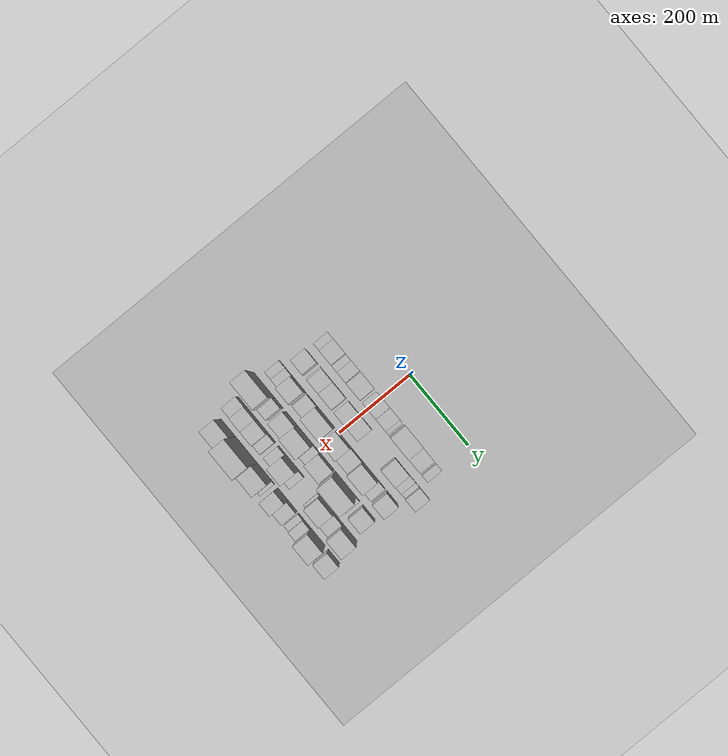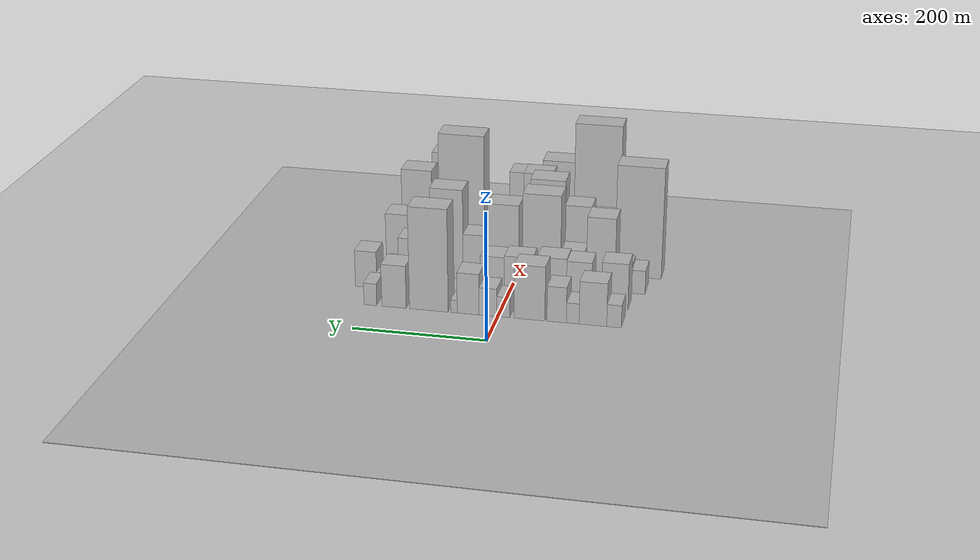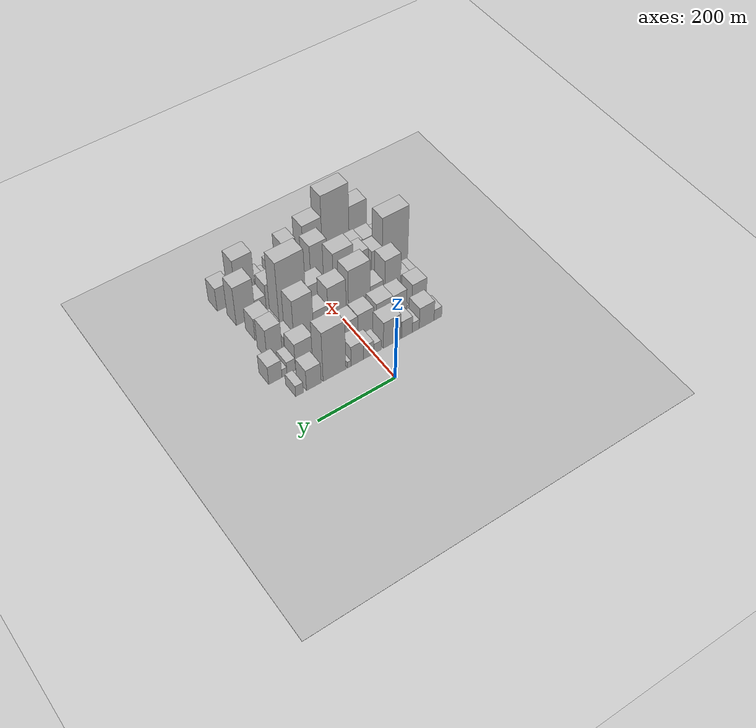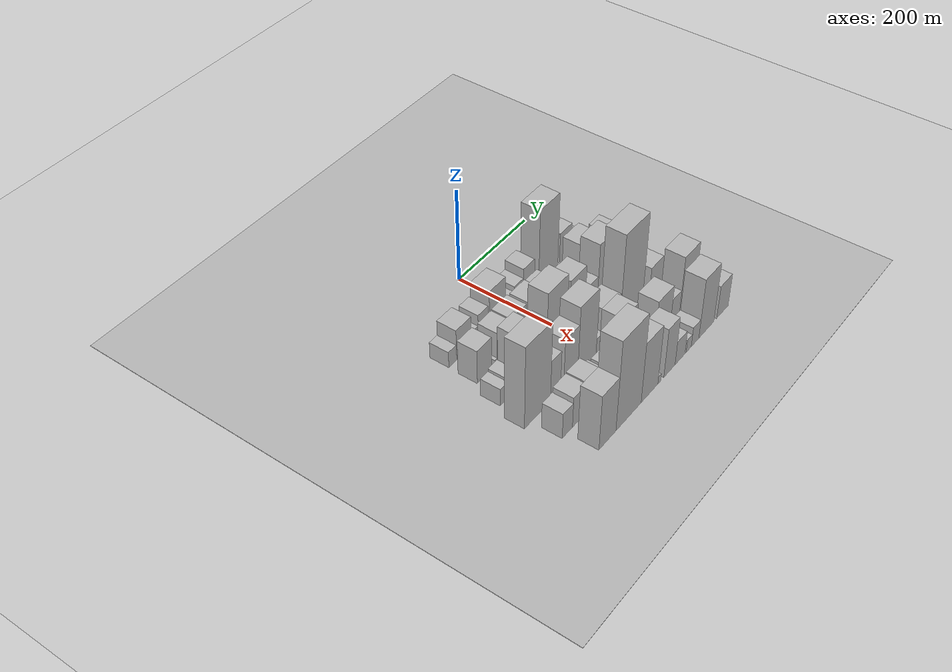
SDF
<sdf version="1.6">
 <world name="default">
  <include><name>ground_plane_1</name><uri>model://HANNAS_ground_plane</uri></include>
  <include>
   <name>ground_plane_2</name>
   <uri>model://HANNAS_ground_plane</uri>
   <pose>100 0 0  0 0 0</pose>
  </include>
  <model name="building_23">
   <static>1</static>
   <pose>100.0000 -173.1768 0 0.000000 0.000000 0.000000</pose>
   <link name="link">
    <pose>0 0 18.00 0 0 0</pose>
    <collision name="collision"><geometry><box><size>40.0000 21.5149 36.0000</size></box></geometry></collision>
    <visual name="visual">
     <cast_shadows>0</cast_shadows>
     <geometry><box><size>40.0000 21.5149 36.0000</size></box></geometry>
     <material>
      <script>
       <uri>model://HANNAS_wall/materials/scripts</uri>
       <uri>model://HANNAS_wall/materials/textures</uri>
       <name>vrc/HANNAS_wall</name>
      </script>
     </material>
    </visual>
   </link>
  </model>
  <model name="building_24">
   <static>1</static>
   <pose>100.0000 -141.9982 0 0.000000 0.000000 0.000000</pose>
   <link name="link">
    <pose>0 0 34.50 0 0 0</pose>
    <collision name="collision"><geometry><box><size>40.0000 40.8422 69.0000</size></box></geometry></collision>
    <visual name="visual">
     <cast_shadows>0</cast_shadows>
     <geometry><box><size>40.0000 40.8422 69.0000</size></box></geometry>
     <material>
      <script>
       <uri>model://HANNAS_wall/materials/scripts</uri>
       <uri>model://HANNAS_wall/materials/textures</uri>
       <name>vrc/HANNAS_wall</name>
      </script>
     </material>
    </visual>
   </link>
  </model>
  <model name="building_25">
   <static>1</static>
   <pose>100.0000 -112.1093 0 0.000000 0.000000 0.000000</pose>
   <link name="link">
    <pose>0 0 16.50 0 0 0</pose>
    <collision name="collision"><geometry><box><size>40.0000 18.9356 33.0000</size></box></geometry></collision>
    <visual name="visual">
     <cast_shadows>0</cast_shadows>
     <geometry><box><size>40.0000 18.9356 33.0000</size></box></geometry>
     <material>
      <script>
       <uri>model://HANNAS_wall/materials/scripts</uri>
       <uri>model://HANNAS_wall/materials/textures</uri>
       <name>vrc/HANNAS_wall</name>
      </script>
     </material>
    </visual>
   </link>
  </model>
  <model name="building_26">
   <static>1</static>
   <pose>100.0000 -88.1540 0 0.000000 0.000000 0.000000</pose>
   <link name="link">
    <pose>0 0 28.50 0 0 0</pose>
    <collision name="collision"><geometry><box><size>40.0000 28.9750 57.0000</size></box></geometry></collision>
    <visual name="visual">
     <cast_shadows>0</cast_shadows>
     <geometry><box><size>40.0000 28.9750 57.0000</size></box></geometry>
     <material>
      <script>
       <uri>model://HANNAS_wall/materials/scripts</uri>
       <uri>model://HANNAS_wall/materials/textures</uri>
       <name>vrc/HANNAS_wall</name>
      </script>
     </material>
    </visual>
   </link>
  </model>
  <model name="building_27">
   <static>1</static>
   <pose>100.0000 -47.4084 0 0.000000 0.000000 0.000000</pose>
   <link name="link">
    <pose>0 0 43.50 0 0 0</pose>
    <collision name="collision"><geometry><box><size>40.0000 46.5162 87.0000</size></box></geometry></collision>
    <visual name="visual">
     <cast_shadows>0</cast_shadows>
     <geometry><box><size>40.0000 46.5162 87.0000</size></box></geometry>
     <material>
      <script>
       <uri>model://HANNAS_wall/materials/scripts</uri>
       <uri>model://HANNAS_wall/materials/textures</uri>
       <name>vrc/HANNAS_wall</name>
      </script>
     </material>
    </visual>
   </link>
  </model>
  <model name="building_28">
   <static>1</static>
   <pose>100.0000 -8.3645 0 0.000000 0.000000 0.000000</pose>
   <link name="link">
    <pose>0 0 16.50 0 0 0</pose>
    <collision name="collision"><geometry><box><size>40.0000 19.5715 33.0000</size></box></geometry></collision>
    <visual name="visual">
     <cast_shadows>0</cast_shadows>
     <geometry><box><size>40.0000 19.5715 33.0000</size></box></geometry>
     <material>
      <script>
       <uri>model://HANNAS_wall/materials/scripts</uri>
       <uri>model://HANNAS_wall/materials/textures</uri>
       <name>vrc/HANNAS_wall</name>
      </script>
     </material>
    </visual>
   </link>
  </model>
  <model name="building_29">
   <static>1</static>
   <pose>100.0000 14.8589 0 0.000000 0.000000 0.000000</pose>
   <link name="link">
    <pose>0 0 22.50 0 0 0</pose>
    <collision name="collision"><geometry><box><size>40.0000 26.8753 45.0000</size></box></geometry></collision>
    <visual name="visual">
     <cast_shadows>0</cast_shadows>
     <geometry><box><size>40.0000 26.8753 45.0000</size></box></geometry>
     <material>
      <script>
       <uri>model://HANNAS_wall/materials/scripts</uri>
       <uri>model://HANNAS_wall/materials/textures</uri>
       <name>vrc/HANNAS_wall</name>
      </script>
     </material>
    </visual>
   </link>
  </model>
  <model name="building_30">
   <static>1</static>
   <pose>100.0000 44.9759 0 0.000000 0.000000 0.000000</pose>
   <link name="link">
    <pose>0 0 33.00 0 0 0</pose>
    <collision name="collision"><geometry><box><size>40.0000 33.3587 66.0000</size></box></geometry></collision>
    <visual name="visual">
     <cast_shadows>0</cast_shadows>
     <geometry><box><size>40.0000 33.3587 66.0000</size></box></geometry>
     <material>
      <script>
       <uri>model://HANNAS_wall/materials/scripts</uri>
       <uri>model://HANNAS_wall/materials/textures</uri>
       <name>vrc/HANNAS_wall</name>
      </script>
     </material>
    </visual>
   </link>
  </model>
  <model name="building_31">
   <static>1</static>
   <pose>100.0000 66.4421 0 0.000000 0.000000 0.000000</pose>
   <link name="link">
    <pose>0 0 10.50 0 0 0</pose>
    <collision name="collision"><geometry><box><size>40.0000 9.5737 21.0000</size></box></geometry></collision>
    <visual name="visual">
     <cast_shadows>0</cast_shadows>
     <geometry><box><size>40.0000 9.5737 21.0000</size></box></geometry>
     <material>
      <script>
       <uri>model://HANNAS_wall/materials/scripts</uri>
       <uri>model://HANNAS_wall/materials/textures</uri>
       <name>vrc/HANNAS_wall</name>
      </script>
     </material>
    </visual>
   </link>
  </model>
  <model name="building_32">
   <static>1</static>
   <pose>100.0000 104.7939 0 0.000000 0.000000 0.000000</pose>
   <link name="link">
    <pose>0 0 82.50 0 0 0</pose>
    <collision name="collision"><geometry><box><size>40.0000 59.1299 165.0000</size></box></geometry></collision>
    <visual name="visual">
     <cast_shadows>0</cast_shadows>
     <geometry><box><size>40.0000 59.1299 165.0000</size></box></geometry>
     <material>
      <script>
       <uri>model://HANNAS_wall/materials/scripts</uri>
       <uri>model://HANNAS_wall/materials/textures</uri>
       <name>vrc/HANNAS_wall</name>
      </script>
     </material>
    </visual>
   </link>
  </model>
  <model name="building_33">
   <static>1</static>
   <pose>100.0000 158.1552 0 0.000000 0.000000 0.000000</pose>
   <link name="link">
    <pose>0 0 34.50 0 0 0</pose>
    <collision name="collision"><geometry><box><size>40.0000 37.5928 69.0000</size></box></geometry></collision>
    <visual name="visual">
     <cast_shadows>0</cast_shadows>
     <geometry><box><size>40.0000 37.5928 69.0000</size></box></geometry>
     <material>
      <script>
       <uri>model://HANNAS_wall/materials/scripts</uri>
       <uri>model://HANNAS_wall/materials/textures</uri>
       <name>vrc/HANNAS_wall</name>
      </script>
     </material>
    </visual>
   </link>
  </model>
  <model name="building_34">
   <static>1</static>
   <pose>100.0000 194.7335 0 0.000000 0.000000 0.000000</pose>
   <link name="link">
    <pose>0 0 18.00 0 0 0</pose>
    <collision name="collision"><geometry><box><size>40.0000 19.5636 36.0000</size></box></geometry></collision>
    <visual name="visual">
     <cast_shadows>0</cast_shadows>
     <geometry><box><size>40.0000 19.5636 36.0000</size></box></geometry>
     <material>
      <script>
       <uri>model://HANNAS_wall/materials/scripts</uri>
       <uri>model://HANNAS_wall/materials/textures</uri>
       <name>vrc/HANNAS_wall</name>
      </script>
     </material>
    </visual>
   </link>
  </model>
  <model name="building_75">
   <static>1</static>
   <pose>160.0000 -164.9304 0 0.000000 0.000000 0.000000</pose>
   <link name="link">
    <pose>0 0 37.50 0 0 0</pose>
    <collision name="collision"><geometry><box><size>40.0000 40.0663 75.0000</size></box></geometry></collision>
    <visual name="visual">
     <cast_shadows>0</cast_shadows>
     <geometry><box><size>40.0000 40.0663 75.0000</size></box></geometry>
     <material>
      <script>
       <uri>model://HANNAS_wall/materials/scripts</uri>
       <uri>model://HANNAS_wall/materials/textures</uri>
       <name>vrc/HANNAS_wall</name>
      </script>
     </material>
    </visual>
   </link>
  </model>
  <model name="building_76">
   <static>1</static>
   <pose>160.0000 -133.4477 0 0.000000 0.000000 0.000000</pose>
   <link name="link">
    <pose>0 0 7.50 0 0 0</pose>
    <collision name="collision"><geometry><box><size>40.0000 6.8991 15.0000</size></box></geometry></collision>
    <visual name="visual">
     <cast_shadows>0</cast_shadows>
     <geometry><box><size>40.0000 6.8991 15.0000</size></box></geometry>
     <material>
      <script>
       <uri>model://HANNAS_wall/materials/scripts</uri>
       <uri>model://HANNAS_wall/materials/textures</uri>
       <name>vrc/HANNAS_wall</name>
      </script>
     </material>
    </visual>
   </link>
  </model>
  <model name="building_77">
   <static>1</static>
   <pose>160.0000 -111.0752 0 0.000000 0.000000 0.000000</pose>
   <link name="link">
    <pose>0 0 36.00 0 0 0</pose>
    <collision name="collision"><geometry><box><size>40.0000 37.8458 72.0000</size></box></geometry></collision>
    <visual name="visual">
     <cast_shadows>0</cast_shadows>
     <geometry><box><size>40.0000 37.8458 72.0000</size></box></geometry>
     <material>
      <script>
       <uri>model://HANNAS_wall/materials/scripts</uri>
       <uri>model://HANNAS_wall/materials/textures</uri>
       <name>vrc/HANNAS_wall</name>
      </script>
     </material>
    </visual>
   </link>
  </model>
  <model name="building_78">
   <static>1</static>
   <pose>160.0000 -69.7452 0 0.000000 0.000000 0.000000</pose>
   <link name="link">
    <pose>0 0 37.50 0 0 0</pose>
    <collision name="collision"><geometry><box><size>40.0000 44.8142 75.0000</size></box></geometry></collision>
    <visual name="visual">
     <cast_shadows>0</cast_shadows>
     <geometry><box><size>40.0000 44.8142 75.0000</size></box></geometry>
     <material>
      <script>
       <uri>model://HANNAS_wall/materials/scripts</uri>
       <uri>model://HANNAS_wall/materials/textures</uri>
       <name>vrc/HANNAS_wall</name>
      </script>
     </material>
    </visual>
   </link>
  </model>
  <model name="building_79">
   <static>1</static>
   <pose>160.0000 -18.9904 0 0.000000 0.000000 0.000000</pose>
   <link name="link">
    <pose>0 0 36.00 0 0 0</pose>
    <collision name="collision"><geometry><box><size>40.0000 42.6954 72.0000</size></box></geometry></collision>
    <visual name="visual">
     <cast_shadows>0</cast_shadows>
     <geometry><box><size>40.0000 42.6954 72.0000</size></box></geometry>
     <material>
      <script>
       <uri>model://HANNAS_wall/materials/scripts</uri>
       <uri>model://HANNAS_wall/materials/textures</uri>
       <name>vrc/HANNAS_wall</name>
      </script>
     </material>
    </visual>
   </link>
  </model>
  <model name="building_80">
   <static>1</static>
   <pose>160.0000 20.8793 0 0.000000 0.000000 0.000000</pose>
   <link name="link">
    <pose>0 0 34.50 0 0 0</pose>
    <collision name="collision"><geometry><box><size>40.0000 37.0440 69.0000</size></box></geometry></collision>
    <visual name="visual">
     <cast_shadows>0</cast_shadows>
     <geometry><box><size>40.0000 37.0440 69.0000</size></box></geometry>
     <material>
      <script>
       <uri>model://HANNAS_wall/materials/scripts</uri>
       <uri>model://HANNAS_wall/materials/textures</uri>
       <name>vrc/HANNAS_wall</name>
      </script>
     </material>
    </visual>
   </link>
  </model>
  <model name="building_81">
   <static>1</static>
   <pose>160.0000 142.2813 0 0.000000 0.000000 0.000000</pose>
   <link name="link">
    <pose>0 0 43.50 0 0 0</pose>
    <collision name="collision"><geometry><box><size>40.0000 47.9201 87.0000</size></box></geometry></collision>
    <visual name="visual">
     <cast_shadows>0</cast_shadows>
     <geometry><box><size>40.0000 47.9201 87.0000</size></box></geometry>
     <material>
      <script>
       <uri>model://HANNAS_wall/materials/scripts</uri>
       <uri>model://HANNAS_wall/materials/textures</uri>
       <name>vrc/HANNAS_wall</name>
      </script>
     </material>
    </visual>
   </link>
  </model>
  <model name="building_82">
   <static>1</static>
   <pose>160.0000 177.0763 0 0.000000 0.000000 0.000000</pose>
   <link name="link">
    <pose>0 0 21.00 0 0 0</pose>
    <collision name="collision"><geometry><box><size>40.0000 21.6699 42.0000</size></box></geometry></collision>
    <visual name="visual">
     <cast_shadows>0</cast_shadows>
     <geometry><box><size>40.0000 21.6699 42.0000</size></box></geometry>
     <material>
      <script>
       <uri>model://HANNAS_wall/materials/scripts</uri>
       <uri>model://HANNAS_wall/materials/textures</uri>
       <name>vrc/HANNAS_wall</name>
      </script>
     </material>
    </visual>
   </link>
  </model>
  <model name="building_83">
   <static>1</static>
   <pose>160.0000 194.3871 0 0.000000 0.000000 0.000000</pose>
   <link name="link">
    <pose>0 0 13.50 0 0 0</pose>
    <collision name="collision"><geometry><box><size>40.0000 12.9517 27.0000</size></box></geometry></collision>
    <visual name="visual">
     <cast_shadows>0</cast_shadows>
     <geometry><box><size>40.0000 12.9517 27.0000</size></box></geometry>
     <material>
      <script>
       <uri>model://HANNAS_wall/materials/scripts</uri>
       <uri>model://HANNAS_wall/materials/textures</uri>
       <name>vrc/HANNAS_wall</name>
      </script>
     </material>
    </visual>
   </link>
  </model>
  <model name="building_84">
   <static>1</static>
   <pose>160.0000 217.7598 0 0.000000 0.000000 0.000000</pose>
   <link name="link">
    <pose>0 0 30.00 0 0 0</pose>
    <collision name="collision"><geometry><box><size>40.0000 33.7938 60.0000</size></box></geometry></collision>
    <visual name="visual">
     <cast_shadows>0</cast_shadows>
     <geometry><box><size>40.0000 33.7938 60.0000</size></box></geometry>
     <material>
      <script>
       <uri>model://HANNAS_wall/materials/scripts</uri>
       <uri>model://HANNAS_wall/materials/textures</uri>
       <name>vrc/HANNAS_wall</name>
      </script>
     </material>
    </visual>
   </link>
  </model>
  <model name="building_125">
   <static>1</static>
   <pose>220.0000 -192.3449 0 0.000000 0.000000 0.000000</pose>
   <link name="link">
    <pose>0 0 19.50 0 0 0</pose>
    <collision name="collision"><geometry><box><size>40.0000 20.8407 39.0000</size></box></geometry></collision>
    <visual name="visual">
     <cast_shadows>0</cast_shadows>
     <geometry><box><size>40.0000 20.8407 39.0000</size></box></geometry>
     <material>
      <script>
       <uri>model://HANNAS_wall/materials/scripts</uri>
       <uri>model://HANNAS_wall/materials/textures</uri>
       <name>vrc/HANNAS_wall</name>
      </script>
     </material>
    </visual>
   </link>
  </model>
  <model name="building_126">
   <static>1</static>
   <pose>220.0000 -169.1931 0 0.000000 0.000000 0.000000</pose>
   <link name="link">
    <pose>0 0 22.50 0 0 0</pose>
    <collision name="collision"><geometry><box><size>40.0000 25.4629 45.0000</size></box></geometry></collision>
    <visual name="visual">
     <cast_shadows>0</cast_shadows>
     <geometry><box><size>40.0000 25.4629 45.0000</size></box></geometry>
     <material>
      <script>
       <uri>model://HANNAS_wall/materials/scripts</uri>
       <uri>model://HANNAS_wall/materials/textures</uri>
       <name>vrc/HANNAS_wall</name>
      </script>
     </material>
    </visual>
   </link>
  </model>
  <model name="building_127">
   <static>1</static>
   <pose>220.0000 -134.4744 0 0.000000 0.000000 0.000000</pose>
   <link name="link">
    <pose>0 0 60.00 0 0 0</pose>
    <collision name="collision"><geometry><box><size>40.0000 43.9745 120.0000</size></box></geometry></collision>
    <visual name="visual">
     <cast_shadows>0</cast_shadows>
     <geometry><box><size>40.0000 43.9745 120.0000</size></box></geometry>
     <material>
      <script>
       <uri>model://HANNAS_wall/materials/scripts</uri>
       <uri>model://HANNAS_wall/materials/textures</uri>
       <name>vrc/HANNAS_wall</name>
      </script>
     </material>
    </visual>
   </link>
  </model>
  <model name="building_128">
   <static>1</static>
   <pose>220.0000 -90.5871 0 0.000000 0.000000 0.000000</pose>
   <link name="link">
    <pose>0 0 30.00 0 0 0</pose>
    <collision name="collision"><geometry><box><size>40.0000 35.8001 60.0000</size></box></geometry></collision>
    <visual name="visual">
     <cast_shadows>0</cast_shadows>
     <geometry><box><size>40.0000 35.8001 60.0000</size></box></geometry>
     <material>
      <script>
       <uri>model://HANNAS_wall/materials/scripts</uri>
       <uri>model://HANNAS_wall/materials/textures</uri>
       <name>vrc/HANNAS_wall</name>
      </script>
     </material>
    </visual>
   </link>
  </model>
  <model name="building_129">
   <static>1</static>
   <pose>220.0000 -43.1954 0 0.000000 0.000000 0.000000</pose>
   <link name="link">
    <pose>0 0 75.00 0 0 0</pose>
    <collision name="collision"><geometry><box><size>40.0000 58.9833 150.0000</size></box></geometry></collision>
    <visual name="visual">
     <cast_shadows>0</cast_shadows>
     <geometry><box><size>40.0000 58.9833 150.0000</size></box></geometry>
     <material>
      <script>
       <uri>model://HANNAS_wall/materials/scripts</uri>
       <uri>model://HANNAS_wall/materials/textures</uri>
       <name>vrc/HANNAS_wall</name>
      </script>
     </material>
    </visual>
   </link>
  </model>
  <model name="building_130">
   <static>1</static>
   <pose>220.0000 16.4787 0 0.000000 0.000000 0.000000</pose>
   <link name="link">
    <pose>0 0 64.50 0 0 0</pose>
    <collision name="collision"><geometry><box><size>40.0000 48.3648 129.0000</size></box></geometry></collision>
    <visual name="visual">
     <cast_shadows>0</cast_shadows>
     <geometry><box><size>40.0000 48.3648 129.0000</size></box></geometry>
     <material>
      <script>
       <uri>model://HANNAS_wall/materials/scripts</uri>
       <uri>model://HANNAS_wall/materials/textures</uri>
       <name>vrc/HANNAS_wall</name>
      </script>
     </material>
    </visual>
   </link>
  </model>
  <model name="building_131">
   <static>1</static>
   <pose>220.0000 60.0836 0 0.000000 0.000000 0.000000</pose>
   <link name="link">
    <pose>0 0 37.50 0 0 0</pose>
    <collision name="collision"><geometry><box><size>40.0000 38.8449 75.0000</size></box></geometry></collision>
    <visual name="visual">
     <cast_shadows>0</cast_shadows>
     <geometry><box><size>40.0000 38.8449 75.0000</size></box></geometry>
     <material>
      <script>
       <uri>model://HANNAS_wall/materials/scripts</uri>
       <uri>model://HANNAS_wall/materials/textures</uri>
       <name>vrc/HANNAS_wall</name>
      </script>
     </material>
    </visual>
   </link>
  </model>
  <model name="building_132">
   <static>1</static>
   <pose>220.0000 105.2990 0 0.000000 0.000000 0.000000</pose>
   <link name="link">
    <pose>0 0 73.50 0 0 0</pose>
    <collision name="collision"><geometry><box><size>40.0000 51.5858 147.0000</size></box></geometry></collision>
    <visual name="visual">
     <cast_shadows>0</cast_shadows>
     <geometry><box><size>40.0000 51.5858 147.0000</size></box></geometry>
     <material>
      <script>
       <uri>model://HANNAS_wall/materials/scripts</uri>
       <uri>model://HANNAS_wall/materials/textures</uri>
       <name>vrc/HANNAS_wall</name>
      </script>
     </material>
    </visual>
   </link>
  </model>
  <model name="building_133">
   <static>1</static>
   <pose>220.0000 144.1184 0 0.000000 0.000000 0.000000</pose>
   <link name="link">
    <pose>0 0 22.50 0 0 0</pose>
    <collision name="collision"><geometry><box><size>40.0000 26.0529 45.0000</size></box></geometry></collision>
    <visual name="visual">
     <cast_shadows>0</cast_shadows>
     <geometry><box><size>40.0000 26.0529 45.0000</size></box></geometry>
     <material>
      <script>
       <uri>model://HANNAS_wall/materials/scripts</uri>
       <uri>model://HANNAS_wall/materials/textures</uri>
       <name>vrc/HANNAS_wall</name>
      </script>
     </material>
    </visual>
   </link>
  </model>
  <model name="building_134">
   <static>1</static>
   <pose>220.0000 181.7764 0 0.000000 0.000000 0.000000</pose>
   <link name="link">
    <pose>0 0 49.50 0 0 0</pose>
    <collision name="collision"><geometry><box><size>40.0000 39.2630 99.0000</size></box></geometry></collision>
    <visual name="visual">
     <cast_shadows>0</cast_shadows>
     <geometry><box><size>40.0000 39.2630 99.0000</size></box></geometry>
     <material>
      <script>
       <uri>model://HANNAS_wall/materials/scripts</uri>
       <uri>model://HANNAS_wall/materials/textures</uri>
       <name>vrc/HANNAS_wall</name>
      </script>
     </material>
    </visual>
   </link>
  </model>
  <model name="building_182">
   <static>1</static>
   <pose>280.0000 -183.7729 0 0.000000 0.000000 0.000000</pose>
   <link name="link">
    <pose>0 0 91.50 0 0 0</pose>
    <collision name="collision"><geometry><box><size>40.0000 72.4180 183.0000</size></box></geometry></collision>
    <visual name="visual">
     <cast_shadows>0</cast_shadows>
     <geometry><box><size>40.0000 72.4180 183.0000</size></box></geometry>
     <material>
      <script>
       <uri>model://HANNAS_wall/materials/scripts</uri>
       <uri>model://HANNAS_wall/materials/textures</uri>
       <name>vrc/HANNAS_wall</name>
      </script>
     </material>
    </visual>
   </link>
  </model>
  <model name="building_183">
   <static>1</static>
   <pose>280.0000 -133.1842 0 0.000000 0.000000 0.000000</pose>
   <link name="link">
    <pose>0 0 46.50 0 0 0</pose>
    <collision name="collision"><geometry><box><size>40.0000 28.7594 93.0000</size></box></geometry></collision>
    <visual name="visual">
     <cast_shadows>0</cast_shadows>
     <geometry><box><size>40.0000 28.7594 93.0000</size></box></geometry>
     <material>
      <script>
       <uri>model://HANNAS_wall/materials/scripts</uri>
       <uri>model://HANNAS_wall/materials/textures</uri>
       <name>vrc/HANNAS_wall</name>
      </script>
     </material>
    </visual>
   </link>
  </model>
  <model name="building_184">
   <static>1</static>
   <pose>280.0000 -89.0479 0 0.000000 0.000000 0.000000</pose>
   <link name="link">
    <pose>0 0 55.50 0 0 0</pose>
    <collision name="collision"><geometry><box><size>40.0000 41.5133 111.0000</size></box></geometry></collision>
    <visual name="visual">
     <cast_shadows>0</cast_shadows>
     <geometry><box><size>40.0000 41.5133 111.0000</size></box></geometry>
     <material>
      <script>
       <uri>model://HANNAS_wall/materials/scripts</uri>
       <uri>model://HANNAS_wall/materials/textures</uri>
       <name>vrc/HANNAS_wall</name>
      </script>
     </material>
    </visual>
   </link>
  </model>
  <model name="building_185">
   <static>1</static>
   <pose>280.0000 -40.9970 0 0.000000 0.000000 0.000000</pose>
   <link name="link">
    <pose>0 0 75.00 0 0 0</pose>
    <collision name="collision"><geometry><box><size>40.0000 54.5884 150.0000</size></box></geometry></collision>
    <visual name="visual">
     <cast_shadows>0</cast_shadows>
     <geometry><box><size>40.0000 54.5884 150.0000</size></box></geometry>
     <material>
      <script>
       <uri>model://HANNAS_wall/materials/scripts</uri>
       <uri>model://HANNAS_wall/materials/textures</uri>
       <name>vrc/HANNAS_wall</name>
      </script>
     </material>
    </visual>
   </link>
  </model>
  <model name="building_186">
   <static>1</static>
   <pose>280.0000 -3.6374 0 0.000000 0.000000 0.000000</pose>
   <link name="link">
    <pose>0 0 18.00 0 0 0</pose>
    <collision name="collision"><geometry><box><size>40.0000 20.1308 36.0000</size></box></geometry></collision>
    <visual name="visual">
     <cast_shadows>0</cast_shadows>
     <geometry><box><size>40.0000 20.1308 36.0000</size></box></geometry>
     <material>
      <script>
       <uri>model://HANNAS_wall/materials/scripts</uri>
       <uri>model://HANNAS_wall/materials/textures</uri>
       <name>vrc/HANNAS_wall</name>
      </script>
     </material>
    </visual>
   </link>
  </model>
  <model name="building_187">
   <static>1</static>
   <pose>280.0000 31.1905 0 0.000000 0.000000 0.000000</pose>
   <link name="link">
    <pose>0 0 43.50 0 0 0</pose>
    <collision name="collision"><geometry><box><size>40.0000 49.5250 87.0000</size></box></geometry></collision>
    <visual name="visual">
     <cast_shadows>0</cast_shadows>
     <geometry><box><size>40.0000 49.5250 87.0000</size></box></geometry>
     <material>
      <script>
       <uri>model://HANNAS_wall/materials/scripts</uri>
       <uri>model://HANNAS_wall/materials/textures</uri>
       <name>vrc/HANNAS_wall</name>
      </script>
     </material>
    </visual>
   </link>
  </model>
  <model name="building_188">
   <static>1</static>
   <pose>280.0000 94.9098 0 0.000000 0.000000 0.000000</pose>
   <link name="link">
    <pose>0 0 106.50 0 0 0</pose>
    <collision name="collision"><geometry><box><size>40.0000 71.9135 213.0000</size></box></geometry></collision>
    <visual name="visual">
     <cast_shadows>0</cast_shadows>
     <geometry><box><size>40.0000 71.9135 213.0000</size></box></geometry>
     <material>
      <script>
       <uri>model://HANNAS_wall/materials/scripts</uri>
       <uri>model://HANNAS_wall/materials/textures</uri>
       <name>vrc/HANNAS_wall</name>
      </script>
     </material>
    </visual>
   </link>
  </model>
  <model name="building_189">
   <static>1</static>
   <pose>280.0000 137.4088 0 0.000000 0.000000 0.000000</pose>
   <link name="link">
    <pose>0 0 13.50 0 0 0</pose>
    <collision name="collision"><geometry><box><size>40.0000 13.0846 27.0000</size></box></geometry></collision>
    <visual name="visual">
     <cast_shadows>0</cast_shadows>
     <geometry><box><size>40.0000 13.0846 27.0000</size></box></geometry>
     <material>
      <script>
       <uri>model://HANNAS_wall/materials/scripts</uri>
       <uri>model://HANNAS_wall/materials/textures</uri>
       <name>vrc/HANNAS_wall</name>
      </script>
     </material>
    </visual>
   </link>
  </model>
  <model name="building_190">
   <static>1</static>
   <pose>280.0000 174.4395 0 0.000000 0.000000 0.000000</pose>
   <link name="link">
    <pose>0 0 36.00 0 0 0</pose>
    <collision name="collision"><geometry><box><size>40.0000 40.9766 72.0000</size></box></geometry></collision>
    <visual name="visual">
     <cast_shadows>0</cast_shadows>
     <geometry><box><size>40.0000 40.9766 72.0000</size></box></geometry>
     <material>
      <script>
       <uri>model://HANNAS_wall/materials/scripts</uri>
       <uri>model://HANNAS_wall/materials/textures</uri>
       <name>vrc/HANNAS_wall</name>
      </script>
     </material>
    </visual>
   </link>
  </model>
  <model name="building_230">
   <static>1</static>
   <pose>340.0000 -186.9085 0 0.000000 0.000000 0.000000</pose>
   <link name="link">
    <pose>0 0 28.50 0 0 0</pose>
    <collision name="collision"><geometry><box><size>40.0000 28.7687 57.0000</size></box></geometry></collision>
    <visual name="visual">
     <cast_shadows>0</cast_shadows>
     <geometry><box><size>40.0000 28.7687 57.0000</size></box></geometry>
     <material>
      <script>
       <uri>model://HANNAS_wall/materials/scripts</uri>
       <uri>model://HANNAS_wall/materials/textures</uri>
       <name>vrc/HANNAS_wall</name>
      </script>
     </material>
    </visual>
   </link>
  </model>
  <model name="building_231">
   <static>1</static>
   <pose>340.0000 -153.8831 0 0.000000 0.000000 0.000000</pose>
   <link name="link">
    <pose>0 0 34.50 0 0 0</pose>
    <collision name="collision"><geometry><box><size>40.0000 37.2822 69.0000</size></box></geometry></collision>
    <visual name="visual">
     <cast_shadows>0</cast_shadows>
     <geometry><box><size>40.0000 37.2822 69.0000</size></box></geometry>
     <material>
      <script>
       <uri>model://HANNAS_wall/materials/scripts</uri>
       <uri>model://HANNAS_wall/materials/textures</uri>
       <name>vrc/HANNAS_wall</name>
      </script>
     </material>
    </visual>
   </link>
  </model>
  <model name="building_232">
   <static>1</static>
   <pose>340.0000 -115.8529 0 0.000000 0.000000 0.000000</pose>
   <link name="link">
    <pose>0 0 36.00 0 0 0</pose>
    <collision name="collision"><geometry><box><size>40.0000 38.7782 72.0000</size></box></geometry></collision>
    <visual name="visual">
     <cast_shadows>0</cast_shadows>
     <geometry><box><size>40.0000 38.7782 72.0000</size></box></geometry>
     <material>
      <script>
       <uri>model://HANNAS_wall/materials/scripts</uri>
       <uri>model://HANNAS_wall/materials/textures</uri>
       <name>vrc/HANNAS_wall</name>
      </script>
     </material>
    </visual>
   </link>
  </model>
  <model name="building_233">
   <static>1</static>
   <pose>340.0000 -84.1850 0 0.000000 0.000000 0.000000</pose>
   <link name="link">
    <pose>0 0 24.00 0 0 0</pose>
    <collision name="collision"><geometry><box><size>40.0000 24.5577 48.0000</size></box></geometry></collision>
    <visual name="visual">
     <cast_shadows>0</cast_shadows>
     <geometry><box><size>40.0000 24.5577 48.0000</size></box></geometry>
     <material>
      <script>
       <uri>model://HANNAS_wall/materials/scripts</uri>
       <uri>model://HANNAS_wall/materials/textures</uri>
       <name>vrc/HANNAS_wall</name>
      </script>
     </material>
    </visual>
   </link>
  </model>
  <model name="building_234">
   <static>1</static>
   <pose>340.0000 -49.6162 0 0.000000 0.000000 0.000000</pose>
   <link name="link">
    <pose>0 0 21.00 0 0 0</pose>
    <collision name="collision"><geometry><box><size>40.0000 24.5799 42.0000</size></box></geometry></collision>
    <visual name="visual">
     <cast_shadows>0</cast_shadows>
     <geometry><box><size>40.0000 24.5799 42.0000</size></box></geometry>
     <material>
      <script>
       <uri>model://HANNAS_wall/materials/scripts</uri>
       <uri>model://HANNAS_wall/materials/textures</uri>
       <name>vrc/HANNAS_wall</name>
      </script>
     </material>
    </visual>
   </link>
  </model>
  <model name="building_235">
   <static>1</static>
   <pose>340.0000 -14.7183 0 0.000000 0.000000 0.000000</pose>
   <link name="link">
    <pose>0 0 67.50 0 0 0</pose>
    <collision name="collision"><geometry><box><size>40.0000 45.2158 135.0000</size></box></geometry></collision>
    <visual name="visual">
     <cast_shadows>0</cast_shadows>
     <geometry><box><size>40.0000 45.2158 135.0000</size></box></geometry>
     <material>
      <script>
       <uri>model://HANNAS_wall/materials/scripts</uri>
       <uri>model://HANNAS_wall/materials/textures</uri>
       <name>vrc/HANNAS_wall</name>
      </script>
     </material>
    </visual>
   </link>
  </model>
  <model name="building_236">
   <static>1</static>
   <pose>340.0000 17.0361 0 0.000000 0.000000 0.000000</pose>
   <link name="link">
    <pose>0 0 16.50 0 0 0</pose>
    <collision name="collision"><geometry><box><size>40.0000 18.2930 33.0000</size></box></geometry></collision>
    <visual name="visual">
     <cast_shadows>0</cast_shadows>
     <geometry><box><size>40.0000 18.2930 33.0000</size></box></geometry>
     <material>
      <script>
       <uri>model://HANNAS_wall/materials/scripts</uri>
       <uri>model://HANNAS_wall/materials/textures</uri>
       <name>vrc/HANNAS_wall</name>
      </script>
     </material>
    </visual>
   </link>
  </model>
  <model name="building_237">
   <static>1</static>
   <pose>340.0000 75.0149 0 0.000000 0.000000 0.000000</pose>
   <link name="link">
    <pose>0 0 7.50 0 0 0</pose>
    <collision name="collision"><geometry><box><size>40.0000 6.5548 15.0000</size></box></geometry></collision>
    <visual name="visual">
     <cast_shadows>0</cast_shadows>
     <geometry><box><size>40.0000 6.5548 15.0000</size></box></geometry>
     <material>
      <script>
       <uri>model://HANNAS_wall/materials/scripts</uri>
       <uri>model://HANNAS_wall/materials/textures</uri>
       <name>vrc/HANNAS_wall</name>
      </script>
     </material>
    </visual>
   </link>
  </model>
  <model name="building_238">
   <static>1</static>
   <pose>340.0000 103.1145 0 0.000000 0.000000 0.000000</pose>
   <link name="link">
    <pose>0 0 42.00 0 0 0</pose>
    <collision name="collision"><geometry><box><size>40.0000 49.6444 84.0000</size></box></geometry></collision>
    <visual name="visual">
     <cast_shadows>0</cast_shadows>
     <geometry><box><size>40.0000 49.6444 84.0000</size></box></geometry>
     <material>
      <script>
       <uri>model://HANNAS_wall/materials/scripts</uri>
       <uri>model://HANNAS_wall/materials/textures</uri>
       <name>vrc/HANNAS_wall</name>
      </script>
     </material>
    </visual>
   </link>
  </model>
  <model name="building_239">
   <static>1</static>
   <pose>340.0000 142.5260 0 0.000000 0.000000 0.000000</pose>
   <link name="link">
    <pose>0 0 25.50 0 0 0</pose>
    <collision name="collision"><geometry><box><size>40.0000 29.1785 51.0000</size></box></geometry></collision>
    <visual name="visual">
     <cast_shadows>0</cast_shadows>
     <geometry><box><size>40.0000 29.1785 51.0000</size></box></geometry>
     <material>
      <script>
       <uri>model://HANNAS_wall/materials/scripts</uri>
       <uri>model://HANNAS_wall/materials/textures</uri>
       <name>vrc/HANNAS_wall</name>
      </script>
     </material>
    </visual>
   </link>
  </model>
  <model name="building_240">
   <static>1</static>
   <pose>340.0000 181.9580 0 0.000000 0.000000 0.000000</pose>
   <link name="link">
    <pose>0 0 63.00 0 0 0</pose>
    <collision name="collision"><geometry><box><size>40.0000 49.6854 126.0000</size></box></geometry></collision>
    <visual name="visual">
     <cast_shadows>0</cast_shadows>
     <geometry><box><size>40.0000 49.6854 126.0000</size></box></geometry>
     <material>
      <script>
       <uri>model://HANNAS_wall/materials/scripts</uri>
       <uri>model://HANNAS_wall/materials/textures</uri>
       <name>vrc/HANNAS_wall</name>
      </script>
     </material>
    </visual>
   </link>
  </model>
  <model name="building_283">
   <static>1</static>
   <pose>400.0000 -162.5947 0 0.000000 0.000000 0.000000</pose>
   <link name="link">
    <pose>0 0 61.50 0 0 0</pose>
    <collision name="collision"><geometry><box><size>40.0000 49.0415 123.0000</size></box></geometry></collision>
    <visual name="visual">
     <cast_shadows>0</cast_shadows>
     <geometry><box><size>40.0000 49.0415 123.0000</size></box></geometry>
     <material>
      <script>
       <uri>model://HANNAS_wall/materials/scripts</uri>
       <uri>model://HANNAS_wall/materials/textures</uri>
       <name>vrc/HANNAS_wall</name>
      </script>
     </material>
    </visual>
   </link>
  </model>
  <model name="building_284">
   <static>1</static>
   <pose>400.0000 -100.5595 0 0.000000 0.000000 0.000000</pose>
   <link name="link">
    <pose>0 0 100.50 0 0 0</pose>
    <collision name="collision"><geometry><box><size>40.0000 75.0288 201.0000</size></box></geometry></collision>
    <visual name="visual">
     <cast_shadows>0</cast_shadows>
     <geometry><box><size>40.0000 75.0288 201.0000</size></box></geometry>
     <material>
      <script>
       <uri>model://HANNAS_wall/materials/scripts</uri>
       <uri>model://HANNAS_wall/materials/textures</uri>
       <name>vrc/HANNAS_wall</name>
      </script>
     </material>
    </visual>
   </link>
  </model>
  <model name="building_285">
   <static>1</static>
   <pose>400.0000 -37.2973 0 0.000000 0.000000 0.000000</pose>
   <link name="link">
    <pose>0 0 67.50 0 0 0</pose>
    <collision name="collision"><geometry><box><size>40.0000 51.4957 135.0000</size></box></geometry></collision>
    <visual name="visual">
     <cast_shadows>0</cast_shadows>
     <geometry><box><size>40.0000 51.4957 135.0000</size></box></geometry>
     <material>
      <script>
       <uri>model://HANNAS_wall/materials/scripts</uri>
       <uri>model://HANNAS_wall/materials/textures</uri>
       <name>vrc/HANNAS_wall</name>
      </script>
     </material>
    </visual>
   </link>
  </model>
  <model name="building_286">
   <static>1</static>
   <pose>400.0000 -7.2035 0 0.000000 0.000000 0.000000</pose>
   <link name="link">
    <pose>0 0 9.00 0 0 0</pose>
    <collision name="collision"><geometry><box><size>40.0000 8.6919 18.0000</size></box></geometry></collision>
    <visual name="visual">
     <cast_shadows>0</cast_shadows>
     <geometry><box><size>40.0000 8.6919 18.0000</size></box></geometry>
     <material>
      <script>
       <uri>model://HANNAS_wall/materials/scripts</uri>
       <uri>model://HANNAS_wall/materials/textures</uri>
       <name>vrc/HANNAS_wall</name>
      </script>
     </material>
    </visual>
   </link>
  </model>
  <model name="building_287">
   <static>1</static>
   <pose>400.0000 24.9759 0 0.000000 0.000000 0.000000</pose>
   <link name="link">
    <pose>0 0 55.50 0 0 0</pose>
    <collision name="collision"><geometry><box><size>40.0000 35.6670 111.0000</size></box></geometry></collision>
    <visual name="visual">
     <cast_shadows>0</cast_shadows>
     <geometry><box><size>40.0000 35.6670 111.0000</size></box></geometry>
     <material>
      <script>
       <uri>model://HANNAS_wall/materials/scripts</uri>
       <uri>model://HANNAS_wall/materials/textures</uri>
       <name>vrc/HANNAS_wall</name>
      </script>
     </material>
    </visual>
   </link>
  </model>
  <model name="building_288">
   <static>1</static>
   <pose>400.0000 58.6726 0 0.000000 0.000000 0.000000</pose>
   <link name="link">
    <pose>0 0 27.00 0 0 0</pose>
    <collision name="collision"><geometry><box><size>40.0000 31.7264 54.0000</size></box></geometry></collision>
    <visual name="visual">
     <cast_shadows>0</cast_shadows>
     <geometry><box><size>40.0000 31.7264 54.0000</size></box></geometry>
     <material>
      <script>
       <uri>model://HANNAS_wall/materials/scripts</uri>
       <uri>model://HANNAS_wall/materials/textures</uri>
       <name>vrc/HANNAS_wall</name>
      </script>
     </material>
    </visual>
   </link>
  </model>
  <model name="building_289">
   <static>1</static>
   <pose>400.0000 86.9260 0 0.000000 0.000000 0.000000</pose>
   <link name="link">
    <pose>0 0 15.00 0 0 0</pose>
    <collision name="collision"><geometry><box><size>40.0000 16.7805 30.0000</size></box></geometry></collision>
    <visual name="visual">
     <cast_shadows>0</cast_shadows>
     <geometry><box><size>40.0000 16.7805 30.0000</size></box></geometry>
     <material>
      <script>
       <uri>model://HANNAS_wall/materials/scripts</uri>
       <uri>model://HANNAS_wall/materials/textures</uri>
       <name>vrc/HANNAS_wall</name>
      </script>
     </material>
    </visual>
   </link>
  </model>
  <model name="building_290">
   <static>1</static>
   <pose>400.0000 107.7762 0 0.000000 0.000000 0.000000</pose>
   <link name="link">
    <pose>0 0 22.50 0 0 0</pose>
    <collision name="collision"><geometry><box><size>40.0000 24.9197 45.0000</size></box></geometry></collision>
    <visual name="visual">
     <cast_shadows>0</cast_shadows>
     <geometry><box><size>40.0000 24.9197 45.0000</size></box></geometry>
     <material>
      <script>
       <uri>model://HANNAS_wall/materials/scripts</uri>
       <uri>model://HANNAS_wall/materials/textures</uri>
       <name>vrc/HANNAS_wall</name>
      </script>
     </material>
    </visual>
   </link>
  </model>
  <model name="building_291">
   <static>1</static>
   <pose>400.0000 145.5666 0 0.000000 0.000000 0.000000</pose>
   <link name="link">
    <pose>0 0 67.50 0 0 0</pose>
    <collision name="collision"><geometry><box><size>40.0000 50.6612 135.0000</size></box></geometry></collision>
    <visual name="visual">
     <cast_shadows>0</cast_shadows>
     <geometry><box><size>40.0000 50.6612 135.0000</size></box></geometry>
     <material>
      <script>
       <uri>model://HANNAS_wall/materials/scripts</uri>
       <uri>model://HANNAS_wall/materials/textures</uri>
       <name>vrc/HANNAS_wall</name>
      </script>
     </material>
    </visual>
   </link>
  </model>
  <model name="building_292">
   <static>1</static>
   <pose>400.0000 200.6353 0 0.000000 0.000000 0.000000</pose>
   <link name="link">
    <pose>0 0 37.50 0 0 0</pose>
    <collision name="collision"><geometry><box><size>40.0000 39.4762 75.0000</size></box></geometry></collision>
    <visual name="visual">
     <cast_shadows>0</cast_shadows>
     <geometry><box><size>40.0000 39.4762 75.0000</size></box></geometry>
     <material>
      <script>
       <uri>model://HANNAS_wall/materials/scripts</uri>
       <uri>model://HANNAS_wall/materials/textures</uri>
       <name>vrc/HANNAS_wall</name>
      </script>
     </material>
    </visual>
   </link>
  </model>
 </world>
</sdf>
